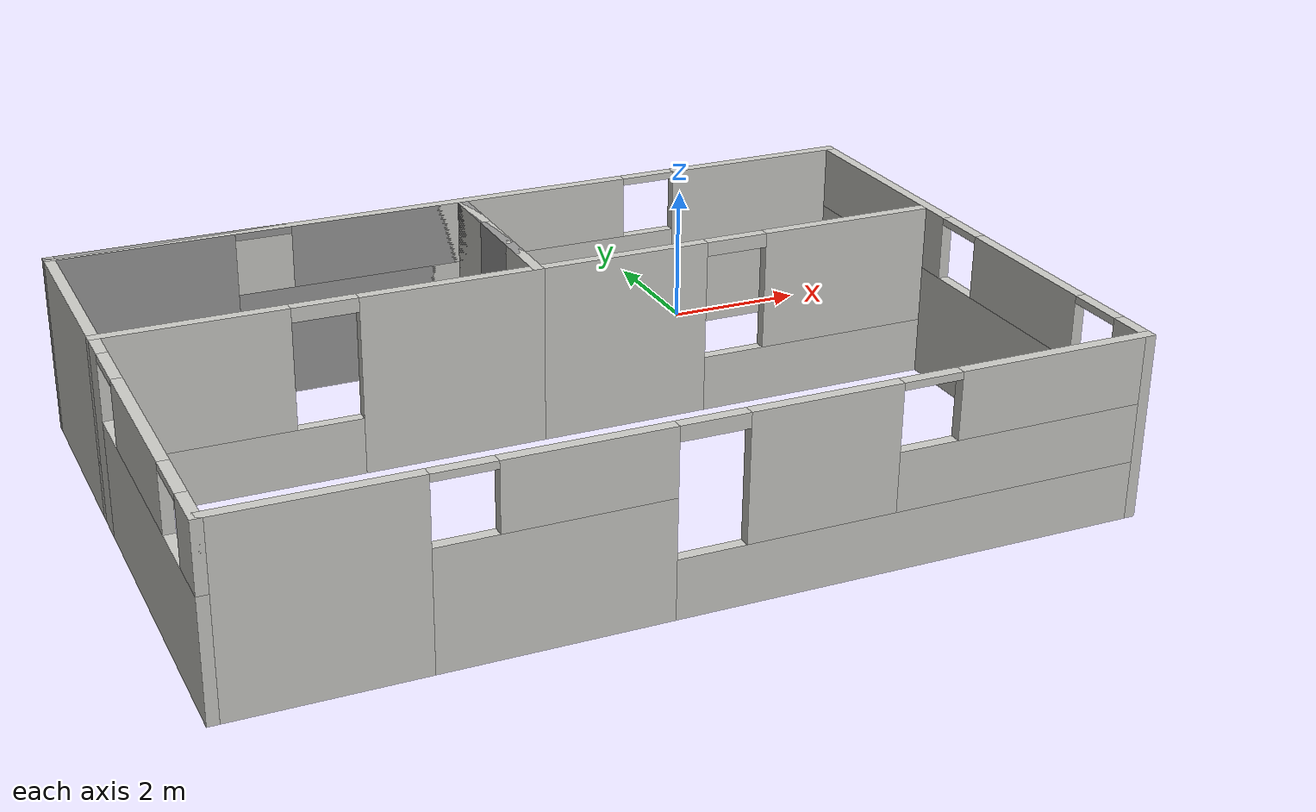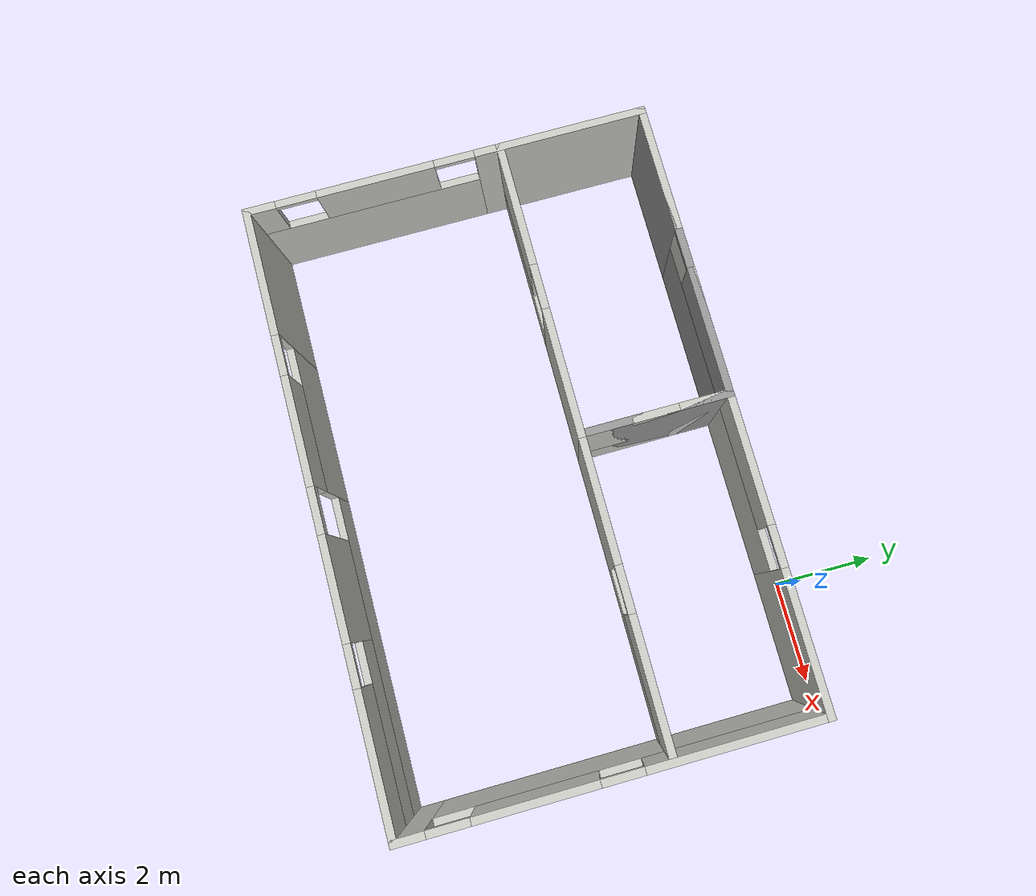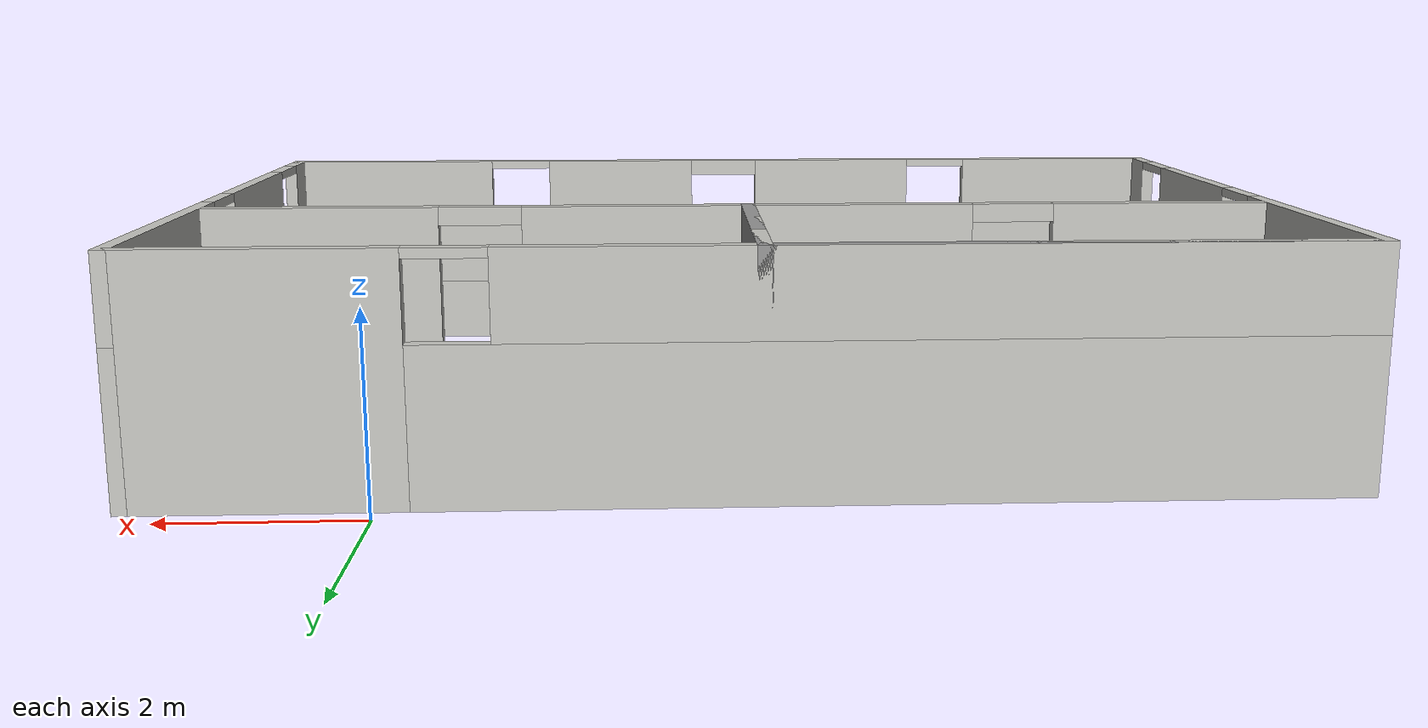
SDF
<?xml version='1.0'?>
<sdf version='1.7'>
  <model name='room_minirys_sim'>
    <pose>-3.5645 -4.12212 0 0 -0 0</pose>
    <link name='Wall_59'>
      <pose>-5.925 -0.122122 0 0 -0 -1.5708</pose>
      <visual name='Wall_59_Visual_0'>
        <pose>-2.27958 0 1.25 0 -0 0</pose>
        <geometry>
          <box>
            <size>3.44084 0.15 2.5</size>
          </box>
        </geometry>
        <material>
          <script>
            <uri>file://media/materials/scripts/gazebo.material</uri>
            <name>Gazebo/CeilingTiled</name>
          </script>
          <ambient>1 1 1 1</ambient>
        </material>
        <meta>
          <layer>0</layer>
        </meta>
      </visual>
      <collision name='Wall_59_Collision_0'>
        <geometry>
          <box>
            <size>3.44084 0.15 2.5</size>
          </box>
        </geometry>
        <pose>-2.27958 0 1.25 0 -0 0</pose>
      </collision>
      <visual name='Wall_59_Visual_1'>
        <pose>1.72042 0 0.8 0 -0 0</pose>
        <geometry>
          <box>
            <size>4.55916 0.15 1.6</size>
          </box>
        </geometry>
        <material>
          <script>
            <uri>file://media/materials/scripts/gazebo.material</uri>
            <name>Gazebo/CeilingTiled</name>
          </script>
          <ambient>1 1 1 1</ambient>
        </material>
        <meta>
          <layer>0</layer>
        </meta>
      </visual>
      <collision name='Wall_59_Collision_1'>
        <geometry>
          <box>
            <size>4.55916 0.15 1.6</size>
          </box>
        </geometry>
        <pose>1.72042 0 0.8 0 -0 0</pose>
      </collision>
      <visual name='Wall_59_Visual_2'>
        <pose>1.40084 0 2.05 0 -0 0</pose>
        <geometry>
          <box>
            <size>2.32 0.15 0.9</size>
          </box>
        </geometry>
        <material>
          <script>
            <uri>file://media/materials/scripts/gazebo.material</uri>
            <name>Gazebo/CeilingTiled</name>
          </script>
          <ambient>1 1 1 1</ambient>
        </material>
        <meta>
          <layer>0</layer>
        </meta>
      </visual>
      <collision name='Wall_59_Collision_2'>
        <geometry>
          <box>
            <size>2.32 0.15 0.9</size>
          </box>
        </geometry>
        <pose>1.40084 0 2.05 0 -0 0</pose>
      </collision>
      <visual name='Wall_59_Visual_3'>
        <pose>3.68042 0 2.05 0 -0 0</pose>
        <geometry>
          <box>
            <size>0.639159 0.15 0.9</size>
          </box>
        </geometry>
        <material>
          <script>
            <uri>file://media/materials/scripts/gazebo.material</uri>
            <name>Gazebo/CeilingTiled</name>
          </script>
          <ambient>1 1 1 1</ambient>
        </material>
        <meta>
          <layer>0</layer>
        </meta>
      </visual>
      <collision name='Wall_59_Collision_3'>
        <geometry>
          <box>
            <size>0.639159 0.15 0.9</size>
          </box>
        </geometry>
        <pose>3.68042 0 2.05 0 -0 0</pose>
      </collision>
      <visual name='Wall_59_Visual_4'>
        <pose>-0.159159 0 2.45 0 -0 0</pose>
        <geometry>
          <box>
            <size>0.8 0.15 0.1</size>
          </box>
        </geometry>
        <material>
          <script>
            <uri>file://media/materials/scripts/gazebo.material</uri>
            <name>Gazebo/CeilingTiled</name>
          </script>
          <ambient>1 1 1 1</ambient>
        </material>
        <meta>
          <layer>0</layer>
        </meta>
      </visual>
      <collision name='Wall_59_Collision_4'>
        <geometry>
          <box>
            <size>0.8 0.15 0.1</size>
          </box>
        </geometry>
        <pose>-0.159159 0 2.45 0 -0 0</pose>
      </collision>
      <visual name='Wall_59_Visual_5'>
        <pose>2.96084 0 2.45 0 -0 0</pose>
        <geometry>
          <box>
            <size>0.8 0.15 0.1</size>
          </box>
        </geometry>
        <material>
          <script>
            <uri>file://media/materials/scripts/gazebo.material</uri>
            <name>Gazebo/CeilingTiled</name>
          </script>
          <ambient>1 1 1 1</ambient>
        </material>
        <meta>
          <layer>0</layer>
        </meta>
      </visual>
      <collision name='Wall_59_Collision_5'>
        <geometry>
          <box>
            <size>0.8 0.15 0.1</size>
          </box>
        </geometry>
        <pose>2.96084 0 2.45 0 -0 0</pose>
      </collision>
    </link>
    <link name='Wall_60'>
      <pose>0 -4.04712 0 0 -0 0</pose>
      <visual name='Wall_60_Visual_0'>
        <pose>-4.70225 0 1.25 0 -0 0</pose>
        <geometry>
          <box>
            <size>2.5955 0.15 2.5</size>
          </box>
        </geometry>
        <material>
          <script>
            <uri>file://media/materials/scripts/gazebo.material</uri>
            <name>Gazebo/CeilingTiled</name>
          </script>
          <ambient>1 1 1 1</ambient>
        </material>
        <meta>
          <layer>0</layer>
        </meta>
      </visual>
      <collision name='Wall_60_Collision_0'>
        <geometry>
          <box>
            <size>2.5955 0.15 2.5</size>
          </box>
        </geometry>
        <pose>-4.70225 0 1.25 0 -0 0</pose>
      </collision>
      <visual name='Wall_60_Visual_1'>
        <pose>-1.92696 0 0.8 0 -0 0</pose>
        <geometry>
          <box>
            <size>2.95508 0.15 1.6</size>
          </box>
        </geometry>
        <material>
          <script>
            <uri>file://media/materials/scripts/gazebo.material</uri>
            <name>Gazebo/CeilingTiled</name>
          </script>
          <ambient>1 1 1 1</ambient>
        </material>
        <meta>
          <layer>0</layer>
        </meta>
      </visual>
      <collision name='Wall_60_Collision_1'>
        <geometry>
          <box>
            <size>2.95508 0.15 1.6</size>
          </box>
        </geometry>
        <pose>-1.92696 0 0.8 0 -0 0</pose>
      </collision>
      <visual name='Wall_60_Visual_2'>
        <pose>2.77529 0 0.4 0 -0 0</pose>
        <geometry>
          <box>
            <size>6.44942 0.15 0.8</size>
          </box>
        </geometry>
        <material>
          <script>
            <uri>file://media/materials/scripts/gazebo.material</uri>
            <name>Gazebo/CeilingTiled</name>
          </script>
          <ambient>1 1 1 1</ambient>
        </material>
        <meta>
          <layer>0</layer>
        </meta>
      </visual>
      <collision name='Wall_60_Collision_2'>
        <geometry>
          <box>
            <size>6.44942 0.15 0.8</size>
          </box>
        </geometry>
        <pose>2.77529 0 0.4 0 -0 0</pose>
      </collision>
      <visual name='Wall_60_Visual_3'>
        <pose>1.44954 0 1.65 0 -0 0</pose>
        <geometry>
          <box>
            <size>1.99792 0.15 1.7</size>
          </box>
        </geometry>
        <material>
          <script>
            <uri>file://media/materials/scripts/gazebo.material</uri>
            <name>Gazebo/CeilingTiled</name>
          </script>
          <ambient>1 1 1 1</ambient>
        </material>
        <meta>
          <layer>0</layer>
        </meta>
      </visual>
      <collision name='Wall_60_Collision_3'>
        <geometry>
          <box>
            <size>1.99792 0.15 1.7</size>
          </box>
        </geometry>
        <pose>1.44954 0 1.65 0 -0 0</pose>
      </collision>
      <visual name='Wall_60_Visual_4'>
        <pose>4.22425 0 1.2 0 -0 0</pose>
        <geometry>
          <box>
            <size>3.5515 0.15 0.8</size>
          </box>
        </geometry>
        <material>
          <script>
            <uri>file://media/materials/scripts/gazebo.material</uri>
            <name>Gazebo/CeilingTiled</name>
          </script>
          <ambient>1 1 1 1</ambient>
        </material>
        <meta>
          <layer>0</layer>
        </meta>
      </visual>
      <collision name='Wall_60_Collision_4'>
        <geometry>
          <box>
            <size>3.5515 0.15 0.8</size>
          </box>
        </geometry>
        <pose>4.22425 0 1.2 0 -0 0</pose>
      </collision>
      <visual name='Wall_60_Visual_5'>
        <pose>-1.52696 0 2.05 0 -0 0</pose>
        <geometry>
          <box>
            <size>2.15508 0.15 0.9</size>
          </box>
        </geometry>
        <material>
          <script>
            <uri>file://media/materials/scripts/gazebo.material</uri>
            <name>Gazebo/CeilingTiled</name>
          </script>
          <ambient>1 1 1 1</ambient>
        </material>
        <meta>
          <layer>0</layer>
        </meta>
      </visual>
      <collision name='Wall_60_Collision_5'>
        <geometry>
          <box>
            <size>2.15508 0.15 0.9</size>
          </box>
        </geometry>
        <pose>-1.52696 0 2.05 0 -0 0</pose>
      </collision>
      <visual name='Wall_60_Visual_6'>
        <pose>-1.52696 0 2.05 0 -0 0</pose>
        <geometry>
          <box>
            <size>2.15508 0.15 0.9</size>
          </box>
        </geometry>
        <material>
          <script>
            <uri>file://media/materials/scripts/gazebo.material</uri>
            <name>Gazebo/CeilingTiled</name>
          </script>
          <ambient>1 1 1 1</ambient>
        </material>
        <meta>
          <layer>0</layer>
        </meta>
      </visual>
      <collision name='Wall_60_Collision_6'>
        <geometry>
          <box>
            <size>2.15508 0.15 0.9</size>
          </box>
        </geometry>
        <pose>-1.52696 0 2.05 0 -0 0</pose>
      </collision>
      <visual name='Wall_60_Visual_7'>
        <pose>4.62425 0 2.05 0 -0 0</pose>
        <geometry>
          <box>
            <size>2.7515 0.15 0.9</size>
          </box>
        </geometry>
        <material>
          <script>
            <uri>file://media/materials/scripts/gazebo.material</uri>
            <name>Gazebo/CeilingTiled</name>
          </script>
          <ambient>1 1 1 1</ambient>
        </material>
        <meta>
          <layer>0</layer>
        </meta>
      </visual>
      <collision name='Wall_60_Collision_7'>
        <geometry>
          <box>
            <size>2.7515 0.15 0.9</size>
          </box>
        </geometry>
        <pose>4.62425 0 2.05 0 -0 0</pose>
      </collision>
      <visual name='Wall_60_Visual_8'>
        <pose>0.000584 0 2.4 0 -0 0</pose>
        <geometry>
          <box>
            <size>0.9 0.15 0.2</size>
          </box>
        </geometry>
        <material>
          <script>
            <uri>file://media/materials/scripts/gazebo.material</uri>
            <name>Gazebo/CeilingTiled</name>
          </script>
          <ambient>1 1 1 1</ambient>
        </material>
        <meta>
          <layer>0</layer>
        </meta>
      </visual>
      <collision name='Wall_60_Collision_8'>
        <geometry>
          <box>
            <size>0.9 0.15 0.2</size>
          </box>
        </geometry>
        <pose>0.000584 0 2.4 0 -0 0</pose>
      </collision>
      <visual name='Wall_60_Visual_9'>
        <pose>0.000584 0 2.4 0 -0 0</pose>
        <geometry>
          <box>
            <size>0.9 0.15 0.2</size>
          </box>
        </geometry>
        <material>
          <script>
            <uri>file://media/materials/scripts/gazebo.material</uri>
            <name>Gazebo/CeilingTiled</name>
          </script>
          <ambient>1 1 1 1</ambient>
        </material>
        <meta>
          <layer>0</layer>
        </meta>
      </visual>
      <collision name='Wall_60_Collision_9'>
        <geometry>
          <box>
            <size>0.9 0.15 0.2</size>
          </box>
        </geometry>
        <pose>0.000584 0 2.4 0 -0 0</pose>
      </collision>
      <visual name='Wall_60_Visual_10'>
        <pose>-3.0045 0 2.45 0 -0 0</pose>
        <geometry>
          <box>
            <size>0.8 0.15 0.1</size>
          </box>
        </geometry>
        <material>
          <script>
            <uri>file://media/materials/scripts/gazebo.material</uri>
            <name>Gazebo/CeilingTiled</name>
          </script>
          <ambient>1 1 1 1</ambient>
        </material>
        <meta>
          <layer>0</layer>
        </meta>
      </visual>
      <collision name='Wall_60_Collision_10'>
        <geometry>
          <box>
            <size>0.8 0.15 0.1</size>
          </box>
        </geometry>
        <pose>-3.0045 0 2.45 0 -0 0</pose>
      </collision>
      <visual name='Wall_60_Visual_11'>
        <pose>2.8485 0 2.45 0 -0 0</pose>
        <geometry>
          <box>
            <size>0.8 0.15 0.1</size>
          </box>
        </geometry>
        <material>
          <script>
            <uri>file://media/materials/scripts/gazebo.material</uri>
            <name>Gazebo/CeilingTiled</name>
          </script>
          <ambient>1 1 1 1</ambient>
        </material>
        <meta>
          <layer>0</layer>
        </meta>
      </visual>
      <collision name='Wall_60_Collision_11'>
        <geometry>
          <box>
            <size>0.8 0.15 0.1</size>
          </box>
        </geometry>
        <pose>2.8485 0 2.45 0 -0 0</pose>
      </collision>
    </link>
    <link name='Wall_61'>
      <pose>5.925 -0.122122 0 0 -0 1.5708</pose>
      <visual name='Wall_61_Visual_0'>
        <pose>-3.68038 0 1.25 0 -0 0</pose>
        <geometry>
          <box>
            <size>0.639244 0.15 2.5</size>
          </box>
        </geometry>
        <material>
          <script>
            <uri>file://media/materials/scripts/gazebo.material</uri>
            <name>Gazebo/CeilingTiled</name>
          </script>
          <ambient>1 1 1 1</ambient>
        </material>
        <meta>
          <layer>0</layer>
        </meta>
      </visual>
      <collision name='Wall_61_Collision_0'>
        <geometry>
          <box>
            <size>0.639244 0.15 2.5</size>
          </box>
        </geometry>
        <pose>-3.68038 0 1.25 0 -0 0</pose>
      </collision>
      <visual name='Wall_61_Visual_1'>
        <pose>0.319622 0 0.8 0 -0 0</pose>
        <geometry>
          <box>
            <size>7.36076 0.15 1.6</size>
          </box>
        </geometry>
        <material>
          <script>
            <uri>file://media/materials/scripts/gazebo.material</uri>
            <name>Gazebo/CeilingTiled</name>
          </script>
          <ambient>1 1 1 1</ambient>
        </material>
        <meta>
          <layer>0</layer>
        </meta>
      </visual>
      <collision name='Wall_61_Collision_1'>
        <geometry>
          <box>
            <size>7.36076 0.15 1.6</size>
          </box>
        </geometry>
        <pose>0.319622 0 0.8 0 -0 0</pose>
      </collision>
      <visual name='Wall_61_Visual_2'>
        <pose>-1.40076 0 2.05 0 -0 0</pose>
        <geometry>
          <box>
            <size>2.32 0.15 0.9</size>
          </box>
        </geometry>
        <material>
          <script>
            <uri>file://media/materials/scripts/gazebo.material</uri>
            <name>Gazebo/CeilingTiled</name>
          </script>
          <ambient>1 1 1 1</ambient>
        </material>
        <meta>
          <layer>0</layer>
        </meta>
      </visual>
      <collision name='Wall_61_Collision_2'>
        <geometry>
          <box>
            <size>2.32 0.15 0.9</size>
          </box>
        </geometry>
        <pose>-1.40076 0 2.05 0 -0 0</pose>
      </collision>
      <visual name='Wall_61_Visual_3'>
        <pose>2.27962 0 2.05 0 -0 0</pose>
        <geometry>
          <box>
            <size>3.44076 0.15 0.9</size>
          </box>
        </geometry>
        <material>
          <script>
            <uri>file://media/materials/scripts/gazebo.material</uri>
            <name>Gazebo/CeilingTiled</name>
          </script>
          <ambient>1 1 1 1</ambient>
        </material>
        <meta>
          <layer>0</layer>
        </meta>
      </visual>
      <collision name='Wall_61_Collision_3'>
        <geometry>
          <box>
            <size>3.44076 0.15 0.9</size>
          </box>
        </geometry>
        <pose>2.27962 0 2.05 0 -0 0</pose>
      </collision>
      <visual name='Wall_61_Visual_4'>
        <pose>-2.96076 0 2.45 0 -0 0</pose>
        <geometry>
          <box>
            <size>0.8 0.15 0.1</size>
          </box>
        </geometry>
        <material>
          <script>
            <uri>file://media/materials/scripts/gazebo.material</uri>
            <name>Gazebo/CeilingTiled</name>
          </script>
          <ambient>1 1 1 1</ambient>
        </material>
        <meta>
          <layer>0</layer>
        </meta>
      </visual>
      <collision name='Wall_61_Collision_4'>
        <geometry>
          <box>
            <size>0.8 0.15 0.1</size>
          </box>
        </geometry>
        <pose>-2.96076 0 2.45 0 -0 0</pose>
      </collision>
      <visual name='Wall_61_Visual_5'>
        <pose>0.159244 0 2.45 0 -0 0</pose>
        <geometry>
          <box>
            <size>0.8 0.15 0.1</size>
          </box>
        </geometry>
        <material>
          <script>
            <uri>file://media/materials/scripts/gazebo.material</uri>
            <name>Gazebo/CeilingTiled</name>
          </script>
          <ambient>1 1 1 1</ambient>
        </material>
        <meta>
          <layer>0</layer>
        </meta>
      </visual>
      <collision name='Wall_61_Collision_5'>
        <geometry>
          <box>
            <size>0.8 0.15 0.1</size>
          </box>
        </geometry>
        <pose>0.159244 0 2.45 0 -0 0</pose>
      </collision>
    </link>
    <link name='Wall_62'>
      <pose>0 3.80288 0 0 -0 3.14159</pose>
      <visual name='Wall_62_Visual_0'>
        <pose>-4.62425 0 1.25 0 -0 0</pose>
        <geometry>
          <box>
            <size>2.7515 0.15 2.5</size>
          </box>
        </geometry>
        <material>
          <script>
            <uri>file://media/materials/scripts/gazebo.material</uri>
            <name>Gazebo/CeilingTiled</name>
          </script>
          <ambient>1 1 1 1</ambient>
        </material>
        <meta>
          <layer>0</layer>
        </meta>
      </visual>
      <collision name='Wall_62_Collision_0'>
        <geometry>
          <box>
            <size>2.7515 0.15 2.5</size>
          </box>
        </geometry>
        <pose>-4.62425 0 1.25 0 -0 0</pose>
      </collision>
      <visual name='Wall_62_Visual_1'>
        <pose>1.37575 0 0.8 0 -0 0</pose>
        <geometry>
          <box>
            <size>9.2485 0.15 1.6</size>
          </box>
        </geometry>
        <material>
          <script>
            <uri>file://media/materials/scripts/gazebo.material</uri>
            <name>Gazebo/CeilingTiled</name>
          </script>
          <ambient>1 1 1 1</ambient>
        </material>
        <meta>
          <layer>0</layer>
        </meta>
      </visual>
      <collision name='Wall_62_Collision_1'>
        <geometry>
          <box>
            <size>9.2485 0.15 1.6</size>
          </box>
        </geometry>
        <pose>1.37575 0 0.8 0 -0 0</pose>
      </collision>
      <visual name='Wall_62_Visual_2'>
        <pose>1.77575 0 2.05 0 -0 0</pose>
        <geometry>
          <box>
            <size>8.4485 0.15 0.9</size>
          </box>
        </geometry>
        <material>
          <script>
            <uri>file://media/materials/scripts/gazebo.material</uri>
            <name>Gazebo/CeilingTiled</name>
          </script>
          <ambient>1 1 1 1</ambient>
        </material>
        <meta>
          <layer>0</layer>
        </meta>
      </visual>
      <collision name='Wall_62_Collision_2'>
        <geometry>
          <box>
            <size>8.4485 0.15 0.9</size>
          </box>
        </geometry>
        <pose>1.77575 0 2.05 0 -0 0</pose>
      </collision>
      <visual name='Wall_62_Visual_3'>
        <pose>-2.8485 0 2.45 0 -0 0</pose>
        <geometry>
          <box>
            <size>0.8 0.15 0.1</size>
          </box>
        </geometry>
        <material>
          <script>
            <uri>file://media/materials/scripts/gazebo.material</uri>
            <name>Gazebo/CeilingTiled</name>
          </script>
          <ambient>1 1 1 1</ambient>
        </material>
        <meta>
          <layer>0</layer>
        </meta>
      </visual>
      <collision name='Wall_62_Collision_3'>
        <geometry>
          <box>
            <size>0.8 0.15 0.1</size>
          </box>
        </geometry>
        <pose>-2.8485 0 2.45 0 -0 0</pose>
      </collision>
    </link>
    <link name='Wall_64'>
      <pose>-3 3.80288 0 0 -0 0</pose>
      <visual name='Wall_64_Visual_0'>
        <pose>-1.70225 0 1.25 0 -0 0</pose>
        <geometry>
          <box>
            <size>2.5955 0.15 2.5</size>
          </box>
        </geometry>
        <material>
          <script>
            <uri>file://media/materials/scripts/gazebo.material</uri>
            <name>Gazebo/Grey</name>
          </script>
          <ambient>1 1 1 1</ambient>
        </material>
        <meta>
          <layer>0</layer>
        </meta>
      </visual>
      <collision name='Wall_64_Collision_0'>
        <geometry>
          <box>
            <size>2.5955 0.15 2.5</size>
          </box>
        </geometry>
        <pose>-1.70225 0 1.25 0 -0 0</pose>
      </collision>
      <visual name='Wall_64_Visual_1'>
        <pose>1.29775 0 0.8 0 -0 0</pose>
        <geometry>
          <box>
            <size>3.4045 0.15 1.6</size>
          </box>
        </geometry>
        <material>
          <script>
            <uri>file://media/materials/scripts/gazebo.material</uri>
            <name>Gazebo/Grey</name>
          </script>
          <ambient>1 1 1 1</ambient>
        </material>
        <meta>
          <layer>0</layer>
        </meta>
      </visual>
      <collision name='Wall_64_Collision_1'>
        <geometry>
          <box>
            <size>3.4045 0.15 1.6</size>
          </box>
        </geometry>
        <pose>1.29775 0 0.8 0 -0 0</pose>
      </collision>
      <visual name='Wall_64_Visual_2'>
        <pose>1.69775 0 2.05 0 -0 0</pose>
        <geometry>
          <box>
            <size>2.6045 0.15 0.9</size>
          </box>
        </geometry>
        <material>
          <script>
            <uri>file://media/materials/scripts/gazebo.material</uri>
            <name>Gazebo/Grey</name>
          </script>
          <ambient>1 1 1 1</ambient>
        </material>
        <meta>
          <layer>0</layer>
        </meta>
      </visual>
      <collision name='Wall_64_Collision_2'>
        <geometry>
          <box>
            <size>2.6045 0.15 0.9</size>
          </box>
        </geometry>
        <pose>1.69775 0 2.05 0 -0 0</pose>
      </collision>
      <visual name='Wall_64_Visual_3'>
        <pose>-0.004498 0 2.45 0 -0 0</pose>
        <geometry>
          <box>
            <size>0.8 0.15 0.1</size>
          </box>
        </geometry>
        <material>
          <script>
            <uri>file://media/materials/scripts/gazebo.material</uri>
            <name>Gazebo/Grey</name>
          </script>
          <ambient>1 1 1 1</ambient>
        </material>
        <meta>
          <layer>0</layer>
        </meta>
      </visual>
      <collision name='Wall_64_Collision_3'>
        <geometry>
          <box>
            <size>0.8 0.15 0.1</size>
          </box>
        </geometry>
        <pose>-0.004498 0 2.45 0 -0 0</pose>
      </collision>
    </link>
    <link name='Wall_65'>
      <collision name='Wall_65_Collision'>
        <geometry>
          <box>
            <size>3 0.15 2.5</size>
          </box>
        </geometry>
        <pose>0 0 1.25 0 -0 0</pose>
      </collision>
      <visual name='Wall_65_Visual'>
        <pose>0 0 1.25 0 -0 0</pose>
        <geometry>
          <box>
            <size>3 0.15 2.5</size>
          </box>
        </geometry>
        <material>
          <script>
            <uri>file://media/materials/scripts/gazebo.material</uri>
            <name>Gazebo/Grey</name>
          </script>
          <ambient>1 1 1 1</ambient>
        </material>
        <meta>
          <layer>0</layer>
        </meta>
      </visual>
      <pose>-0.075 2.37788 0 0 -0 -1.5708</pose>
    </link>
    <link name='Wall_66'>
      <pose>-3 0.952878 0 0 -0 3.14159</pose>
      <visual name='Wall_66_Visual_0'>
        <pose>-1.72251 0 1.25 0 -0 0</pose>
        <geometry>
          <box>
            <size>2.55498 0.15 2.5</size>
          </box>
        </geometry>
        <material>
          <script>
            <uri>file://media/materials/scripts/gazebo.material</uri>
            <name>Gazebo/CeilingTiled</name>
          </script>
          <ambient>1 1 1 1</ambient>
        </material>
        <meta>
          <layer>0</layer>
        </meta>
      </visual>
      <collision name='Wall_66_Collision_0'>
        <geometry>
          <box>
            <size>2.55498 0.15 2.5</size>
          </box>
        </geometry>
        <pose>-1.72251 0 1.25 0 -0 0</pose>
      </collision>
      <visual name='Wall_66_Visual_1'>
        <pose>1.27749 0 0.4 0 -0 0</pose>
        <geometry>
          <box>
            <size>3.44502 0.15 0.8</size>
          </box>
        </geometry>
        <material>
          <script>
            <uri>file://media/materials/scripts/gazebo.material</uri>
            <name>Gazebo/CeilingTiled</name>
          </script>
          <ambient>1 1 1 1</ambient>
        </material>
        <meta>
          <layer>0</layer>
        </meta>
      </visual>
      <collision name='Wall_66_Collision_1'>
        <geometry>
          <box>
            <size>3.44502 0.15 0.8</size>
          </box>
        </geometry>
        <pose>1.27749 0 0.4 0 -0 0</pose>
      </collision>
      <visual name='Wall_66_Visual_2'>
        <pose>1.72749 0 1.65 0 -0 0</pose>
        <geometry>
          <box>
            <size>2.54502 0.15 1.7</size>
          </box>
        </geometry>
        <material>
          <script>
            <uri>file://media/materials/scripts/gazebo.material</uri>
            <name>Gazebo/CeilingTiled</name>
          </script>
          <ambient>1 1 1 1</ambient>
        </material>
        <meta>
          <layer>0</layer>
        </meta>
      </visual>
      <collision name='Wall_66_Collision_2'>
        <geometry>
          <box>
            <size>2.54502 0.15 1.7</size>
          </box>
        </geometry>
        <pose>1.72749 0 1.65 0 -0 0</pose>
      </collision>
      <visual name='Wall_66_Visual_3'>
        <pose>0.004982 0 2.4 0 -0 0</pose>
        <geometry>
          <box>
            <size>0.9 0.15 0.2</size>
          </box>
        </geometry>
        <material>
          <script>
            <uri>file://media/materials/scripts/gazebo.material</uri>
            <name>Gazebo/CeilingTiled</name>
          </script>
          <ambient>1 1 1 1</ambient>
        </material>
        <meta>
          <layer>0</layer>
        </meta>
      </visual>
      <collision name='Wall_66_Collision_3'>
        <geometry>
          <box>
            <size>0.9 0.15 0.2</size>
          </box>
        </geometry>
        <pose>0.004982 0 2.4 0 -0 0</pose>
      </collision>
    </link>
    <link name='Wall_69'>
      <pose>-0.075 2.37788 0 0 -0 -1.5708</pose>
      <visual name='Wall_69_Visual_0'>
        <pose>-0.977913 0 1.25 0 -0 0</pose>
        <geometry>
          <box>
            <size>1.04417 0.15 2.5</size>
          </box>
        </geometry>
        <material>
          <script>
            <uri>file://media/materials/scripts/gazebo.material</uri>
            <name>Gazebo/CeilingTiled</name>
          </script>
          <ambient>1 1 1 1</ambient>
        </material>
        <meta>
          <layer>0</layer>
        </meta>
      </visual>
      <collision name='Wall_69_Collision_0'>
        <geometry>
          <box>
            <size>1.04417 0.15 2.5</size>
          </box>
        </geometry>
        <pose>-0.977913 0 1.25 0 -0 0</pose>
      </collision>
      <visual name='Wall_69_Visual_1'>
        <pose>0.522087 0 0.4 0 -0 0</pose>
        <geometry>
          <box>
            <size>1.95583 0.15 0.8</size>
          </box>
        </geometry>
        <material>
          <script>
            <uri>file://media/materials/scripts/gazebo.material</uri>
            <name>Gazebo/CeilingTiled</name>
          </script>
          <ambient>1 1 1 1</ambient>
        </material>
        <meta>
          <layer>0</layer>
        </meta>
      </visual>
      <collision name='Wall_69_Collision_1'>
        <geometry>
          <box>
            <size>1.95583 0.15 0.8</size>
          </box>
        </geometry>
        <pose>0.522087 0 0.4 0 -0 0</pose>
      </collision>
      <visual name='Wall_69_Visual_2'>
        <pose>0.972087 0 1.65 0 -0 0</pose>
        <geometry>
          <box>
            <size>1.05583 0.15 1.7</size>
          </box>
        </geometry>
        <material>
          <script>
            <uri>file://media/materials/scripts/gazebo.material</uri>
            <name>Gazebo/CeilingTiled</name>
          </script>
          <ambient>1 1 1 1</ambient>
        </material>
        <meta>
          <layer>0</layer>
        </meta>
      </visual>
      <collision name='Wall_69_Collision_2'>
        <geometry>
          <box>
            <size>1.05583 0.15 1.7</size>
          </box>
        </geometry>
        <pose>0.972087 0 1.65 0 -0 0</pose>
      </collision>
      <visual name='Wall_69_Visual_3'>
        <pose>-0.005826 0 2.4 0 -0 0</pose>
        <geometry>
          <box>
            <size>0.9 0.15 0.2</size>
          </box>
        </geometry>
        <material>
          <script>
            <uri>file://media/materials/scripts/gazebo.material</uri>
            <name>Gazebo/CeilingTiled</name>
          </script>
          <ambient>1 1 1 1</ambient>
        </material>
        <meta>
          <layer>0</layer>
        </meta>
      </visual>
      <collision name='Wall_69_Collision_3'>
        <geometry>
          <box>
            <size>0.9 0.15 0.2</size>
          </box>
        </geometry>
        <pose>-0.005826 0 2.4 0 -0 0</pose>
      </collision>
    </link>
    <link name='Wall_70'>
      <pose>2.85 0.952878 0 0 -0 0</pose>
      <visual name='Wall_70_Visual_0'>
        <pose>-1.72582 0 1.25 0 -0 0</pose>
        <geometry>
          <box>
            <size>2.54835 0.15 2.5</size>
          </box>
        </geometry>
        <material>
          <script>
            <uri>file://media/materials/scripts/gazebo.material</uri>
            <name>Gazebo/CeilingTiled</name>
          </script>
          <ambient>1 1 1 1</ambient>
        </material>
        <meta>
          <layer>0</layer>
        </meta>
      </visual>
      <collision name='Wall_70_Collision_0'>
        <geometry>
          <box>
            <size>2.54835 0.15 2.5</size>
          </box>
        </geometry>
        <pose>-1.72582 0 1.25 0 -0 0</pose>
      </collision>
      <visual name='Wall_70_Visual_1'>
        <pose>1.27418 0 0.4 0 -0 0</pose>
        <geometry>
          <box>
            <size>3.45165 0.15 0.8</size>
          </box>
        </geometry>
        <material>
          <script>
            <uri>file://media/materials/scripts/gazebo.material</uri>
            <name>Gazebo/CeilingTiled</name>
          </script>
          <ambient>1 1 1 1</ambient>
        </material>
        <meta>
          <layer>0</layer>
        </meta>
      </visual>
      <collision name='Wall_70_Collision_1'>
        <geometry>
          <box>
            <size>3.45165 0.15 0.8</size>
          </box>
        </geometry>
        <pose>1.27418 0 0.4 0 -0 0</pose>
      </collision>
      <visual name='Wall_70_Visual_2'>
        <pose>1.72418 0 1.65 0 -0 0</pose>
        <geometry>
          <box>
            <size>2.55165 0.15 1.7</size>
          </box>
        </geometry>
        <material>
          <script>
            <uri>file://media/materials/scripts/gazebo.material</uri>
            <name>Gazebo/CeilingTiled</name>
          </script>
          <ambient>1 1 1 1</ambient>
        </material>
        <meta>
          <layer>0</layer>
        </meta>
      </visual>
      <collision name='Wall_70_Collision_2'>
        <geometry>
          <box>
            <size>2.55165 0.15 1.7</size>
          </box>
        </geometry>
        <pose>1.72418 0 1.65 0 -0 0</pose>
      </collision>
      <visual name='Wall_70_Visual_3'>
        <pose>-0.001649 0 2.4 0 -0 0</pose>
        <geometry>
          <box>
            <size>0.9 0.15 0.2</size>
          </box>
        </geometry>
        <material>
          <script>
            <uri>file://media/materials/scripts/gazebo.material</uri>
            <name>Gazebo/CeilingTiled</name>
          </script>
          <ambient>1 1 1 1</ambient>
        </material>
        <meta>
          <layer>0</layer>
        </meta>
      </visual>
      <collision name='Wall_70_Collision_3'>
        <geometry>
          <box>
            <size>0.9 0.15 0.2</size>
          </box>
        </geometry>
        <pose>-0.001649 0 2.4 0 -0 0</pose>
      </collision>
    </link>
    <static>1</static>
  </model>
</sdf>
